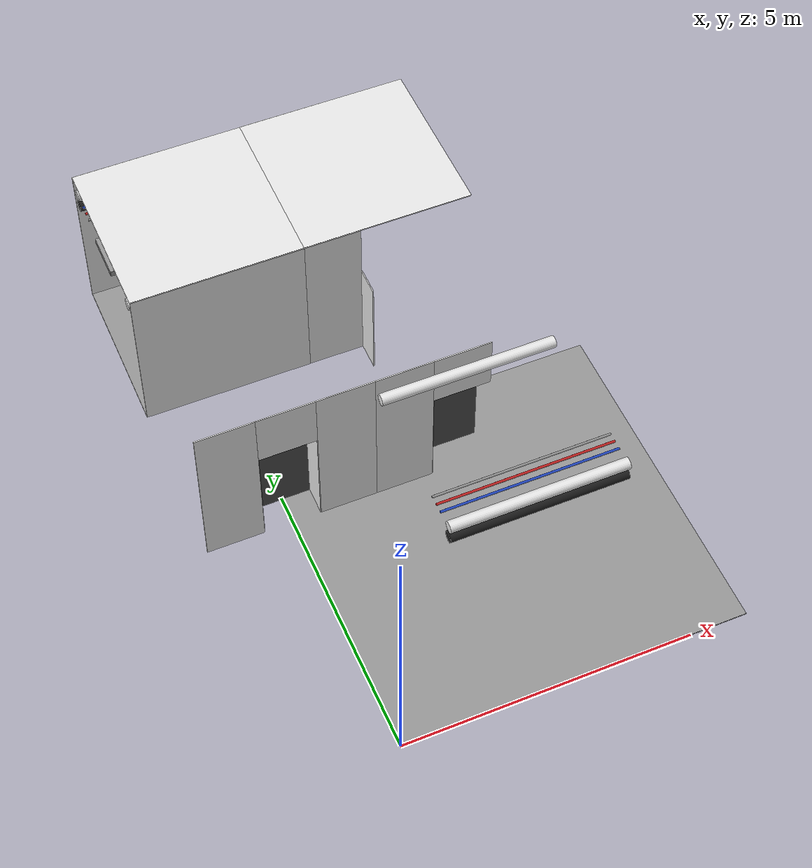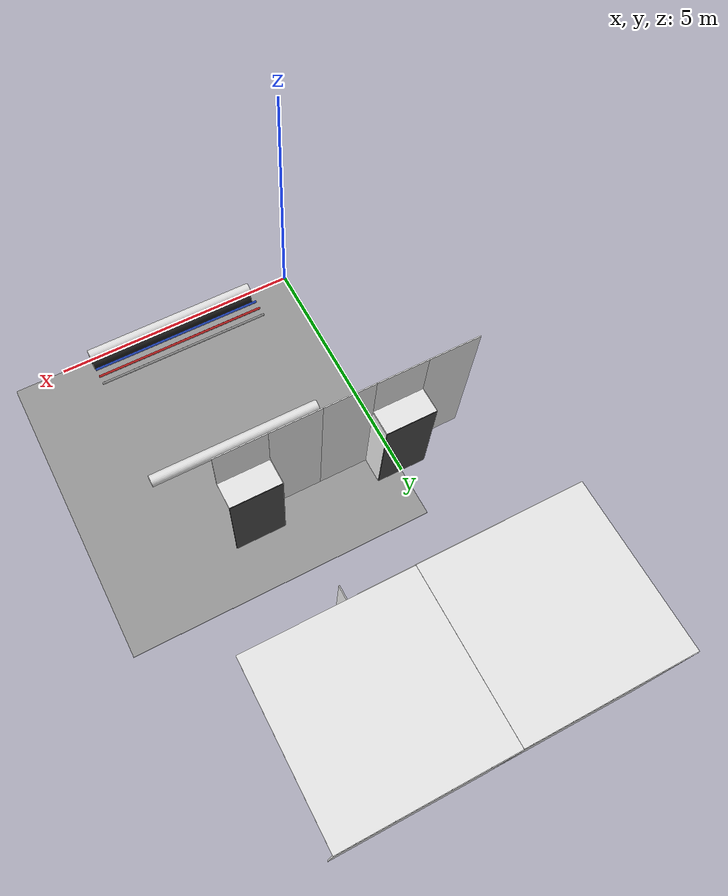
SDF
<sdf version="1.6">
 <world name="default">
  <model name="wall_front_front_left_0_1_0_2">
   <static>1</static>
   <pose>1.0 4.5 1.5 0.0 0.0 0.0</pose>
   <link name="link">
    <collision name="collision"><geometry><box><size>1.0 0.02 3.0</size></box></geometry></collision>
    <visual name="visual">
     <material>
      <script><name>Gazebo/White</name><uri>file://media/materials/scripts/gazebo.material</uri></script>
     </material>
     <geometry><box><size>1.0 0.02 3.0</size></box></geometry>
    </visual>
   </link>
  </model>
  <model name="wall_front_front_right_0_1_0_2">
   <static>1</static>
   <pose>-1.0 4.5 1.5 0.0 0.0 0.0</pose>
   <link name="link">
    <collision name="collision"><geometry><box><size>1.0 0.02 3.0</size></box></geometry></collision>
    <visual name="visual">
     <material>
      <script><name>Gazebo/White</name><uri>file://media/materials/scripts/gazebo.material</uri></script>
     </material>
     <geometry><box><size>1.0 0.02 3.0</size></box></geometry>
    </visual>
   </link>
  </model>
  <model name="wall_front_front_up_0_1_0_2">
   <static>1</static>
   <pose>0.0 4.5 2.5 0.0 0.0 0.0</pose>
   <link name="link">
    <collision name="collision"><geometry><box><size>1.0 0.02 1.0</size></box></geometry></collision>
    <visual name="visual">
     <material>
      <script><name>Gazebo/White</name><uri>file://media/materials/scripts/gazebo.material</uri></script>
     </material>
     <geometry><box><size>1.0 0.02 1.0</size></box></geometry>
    </visual>
   </link>
  </model>
  <model name="wall_front_inside_back_0_1_0_2">
   <static>1</static>
   <pose>0.0 5.0 1.0 0.0 0.0 0.0</pose>
   <link name="link">
    <collision name="collision"><geometry><box><size>1 0.02 2</size></box></geometry></collision>
    <visual name="visual">
     <material>
      <script><name>Gazebo/DarkGrey</name><uri>file://media/materials/scripts/gazebo.material</uri></script>
     </material>
     <geometry><box><size>1 0.02 2</size></box></geometry>
    </visual>
   </link>
  </model>
  <model name="wall_front_inside_left_0_1_0_2">
   <static>1</static>
   <pose>-0.5 4.75 1.0 0.0 0.0 1.57</pose>
   <link name="link">
    <collision name="collision"><geometry><box><size>0.5 0.02 2</size></box></geometry></collision>
    <visual name="visual">
     <material>
      <script><name>Gazebo/White</name><uri>file://media/materials/scripts/gazebo.material</uri></script>
     </material>
     <geometry><box><size>0.5 0.02 2</size></box></geometry>
    </visual>
   </link>
  </model>
  <model name="wall_front_inside_right_0_1_0_2">
   <static>1</static>
   <pose>0.5 4.75 1.0 0.0 0.0 1.57</pose>
   <link name="link">
    <collision name="collision"><geometry><box><size>0.5 0.02 2</size></box></geometry></collision>
    <visual name="visual">
     <material>
      <script><name>Gazebo/White</name><uri>file://media/materials/scripts/gazebo.material</uri></script>
     </material>
     <geometry><box><size>0.5 0.02 2</size></box></geometry>
    </visual>
   </link>
  </model>
  <model name="wall_front_inside_top_0_1_0_2">
   <static>1</static>
   <pose>0.0 4.75 2.0 1.57 0.0 0.0</pose>
   <link name="link">
    <collision name="collision"><geometry><box><size>1 0.02 0.5</size></box></geometry></collision>
    <visual name="visual">
     <material>
      <script><name>Gazebo/White</name><uri>file://media/materials/scripts/gazebo.material</uri></script>
     </material>
     <geometry><box><size>1 0.02 0.5</size></box></geometry>
    </visual>
   </link>
  </model>
  <model name="white_pipe_left_1_1_0_1">
   <static>1</static>
   <pose>3.0 3.0 2.76 0.0 0.0 -1.57</pose>
   <link name="link_0">
    <visual name="visual">
     <pose>-1.3 0 0 1.57 0 0</pose>
     <geometry><cylinder><radius>0.1</radius><length>3.0</length></cylinder></geometry>
     <material>
      <script><uri>file://media/materials/scripts/gazebo.material</uri><name>Gazebo/White</name></script>
     </material>
    </visual>
    <collision name="collision">
     <pose>-1.3 0 0 1.57 0 0</pose>
     <geometry><cylinder><radius>0.1</radius><length>3.0</length></cylinder></geometry>
    </collision>
   </link>
  </model>
  <model name="white_pipe_right_1_1_0_1">
   <static>1</static>
   <pose>3.0 3.0 2.76 0.0 0.0 -1.57</pose>
   <link name="link_0">
    <visual name="visual">
     <pose>1.3 0 0 1.57 0 0</pose>
     <geometry><cylinder><radius>0.1</radius><length>3.0</length></cylinder></geometry>
     <material>
      <script><uri>file://media/materials/scripts/gazebo.material</uri><name>Gazebo/White</name></script>
     </material>
    </visual>
    <collision name="collision">
     <pose>1.3 0 0 1.57 0 0</pose>
     <geometry><cylinder><radius>0.1</radius><length>3.0</length></cylinder></geometry>
    </collision>
   </link>
  </model>
  <model name="black_pipe_right_1_1_0_1">
   <static>1</static>
   <pose>3.0 3.0 2.76 0.0 0.0 -1.57</pose>
   <link name="link_0">
    <visual name="visual">
     <pose>1.3 0 -0.25 1.57 0 0</pose>
     <geometry><cylinder><radius>0.1</radius><length>3.0</length></cylinder></geometry>
     <material>
      <script><uri>file://media/materials/scripts/gazebo.material</uri><name>Gazebo/Black</name></script>
     </material>
    </visual>
    <collision name="collision">
     <pose>1.3 0 -0.25 1.57 0 0</pose>
     <geometry><cylinder><radius>0.1</radius><length>3.0</length></cylinder></geometry>
    </collision>
   </link>
  </model>
  <model name="grey_pipe_right_1_1_0_1">
   <static>1</static>
   <pose>3.0 3.0 2.76 0.0 0.0 -1.57</pose>
   <link name="link_0">
    <visual name="visual">
     <pose>0.7 0 0 1.57 0 0</pose>
     <geometry><cylinder><radius>0.02</radius><length>3.0</length></cylinder></geometry>
     <material>
      <script><uri>file://media/materials/scripts/gazebo.material</uri><name>Gazebo/Grey</name></script>
     </material>
    </visual>
    <collision name="collision">
     <pose>0.7 0 0 1.57 0 0</pose>
     <geometry><cylinder><radius>0.02</radius><length>3.0</length></cylinder></geometry>
    </collision>
   </link>
  </model>
  <model name="red_pipe_right_1_1_0_1">
   <static>1</static>
   <pose>3.0 3.0 2.76 0.0 0.0 -1.57</pose>
   <link name="link_0">
    <visual name="visual">
     <pose>0.85 0 0 1.57 0 0</pose>
     <geometry><cylinder><radius>0.02</radius><length>3.0</length></cylinder></geometry>
     <material>
      <script><uri>file://media/materials/scripts/gazebo.material</uri><name>Gazebo/Red</name></script>
     </material>
    </visual>
    <collision name="collision">
     <pose>0.85 0 0 1.57 0 0</pose>
     <geometry><cylinder><radius>0.02</radius><length>3.0</length></cylinder></geometry>
    </collision>
   </link>
  </model>
  <model name="blue_pipe_right_1_1_0_1">
   <static>1</static>
   <pose>3.0 3.0 2.76 0.0 0.0 -1.57</pose>
   <link name="link_0">
    <visual name="visual">
     <pose>1 0 0 1.57 0 0</pose>
     <geometry><cylinder><radius>0.02</radius><length>3.0</length></cylinder></geometry>
     <material>
      <script><uri>file://media/materials/scripts/gazebo.material</uri><name>Gazebo/Blue</name></script>
     </material>
    </visual>
    <collision name="collision">
     <pose>1 0 0 1.57 0 0</pose>
     <geometry><cylinder><radius>0.02</radius><length>3.0</length></cylinder></geometry>
    </collision>
   </link>
  </model>
  <model name="wall_left_front_right_1_1_0_1">
   <static>1</static>
   <pose>2.0 4.5 1.5 0.0 0.0 0.0</pose>
   <link name="link">
    <collision name="collision"><geometry><box><size>1.0 0.02 3.0</size></box></geometry></collision>
    <visual name="visual">
     <material>
      <script><name>Gazebo/White</name><uri>file://media/materials/scripts/gazebo.material</uri></script>
     </material>
     <geometry><box><size>1.0 0.02 3.0</size></box></geometry>
    </visual>
   </link>
  </model>
  <model name="wall_left_front_up_1_1_0_1">
   <static>1</static>
   <pose>3.0 4.5 2.5 0.0 0.0 0.0</pose>
   <link name="link">
    <collision name="collision"><geometry><box><size>1.0 0.02 1.0</size></box></geometry></collision>
    <visual name="visual">
     <material>
      <script><name>Gazebo/White</name><uri>file://media/materials/scripts/gazebo.material</uri></script>
     </material>
     <geometry><box><size>1.0 0.02 1.0</size></box></geometry>
    </visual>
   </link>
  </model>
  <model name="wall_left_inside_back_1_1_0_1">
   <static>1</static>
   <pose>3.0 5.0 1.0 0.0 0.0 0.0</pose>
   <link name="link">
    <collision name="collision"><geometry><box><size>1 0.02 2</size></box></geometry></collision>
    <visual name="visual">
     <material>
      <script><name>Gazebo/DarkGrey</name><uri>file://media/materials/scripts/gazebo.material</uri></script>
     </material>
     <geometry><box><size>1 0.02 2</size></box></geometry>
    </visual>
   </link>
  </model>
  <model name="wall_left_inside_right_1_1_0_1">
   <static>1</static>
   <pose>2.5 4.75 1.0 0.0 0.0 -1.57</pose>
   <link name="link">
    <collision name="collision"><geometry><box><size>0.5 0.02 2</size></box></geometry></collision>
    <visual name="visual">
     <material>
      <script><name>Gazebo/White</name><uri>file://media/materials/scripts/gazebo.material</uri></script>
     </material>
     <geometry><box><size>0.5 0.02 2</size></box></geometry>
    </visual>
   </link>
  </model>
  <model name="wall_left_inside_top_1_1_0_1">
   <static>1</static>
   <pose>3.0 4.75 2.0 1.57 0.0 0.0</pose>
   <link name="link">
    <collision name="collision"><geometry><box><size>1 0.02 0.5</size></box></geometry></collision>
    <visual name="visual">
     <material>
      <script><name>Gazebo/White</name><uri>file://media/materials/scripts/gazebo.material</uri></script>
     </material>
     <geometry><box><size>1 0.02 0.5</size></box></geometry>
    </visual>
   </link>
  </model>
  <model name="wall_bottom_1_1_0_1">
   <static>1</static>
   <pose>3.0 3.0 0.0 0.0 0.0 -1.57</pose>
   <link name="link">
    <collision name="collision"><geometry><box><size>6.0 6.0 0.02</size></box></geometry></collision>
    <visual name="visual">
     <material>
      <script><name>Gazebo/Grey</name><uri>file://media/materials/scripts/gazebo.material</uri></script>
     </material>
     <geometry><box><size>6.0 6.0 0.02</size></box></geometry>
    </visual>
   </link>
  </model>
  <model name="wall_right_1_3_0_1">
   <static>1</static>
   <pose>3.0 10.5 1.5 0.0 0.0 3.14</pose>
   <link name="link">
    <collision name="collision"><geometry><box><size>3.0 0.02 3.0</size></box></geometry></collision>
    <visual name="visual">
     <material>
      <script><name>Gazebo/White</name><uri>file://media/materials/scripts/gazebo.material</uri></script>
     </material>
     <geometry><box><size>3.0 0.02 3.0</size></box></geometry>
    </visual>
   </link>
  </model>
  <model name="wall_top_1_3_0_1">
   <static>1</static>
   <pose>3.0 9.0 3.0 1.57 0.0 1.57</pose>
   <link name="link">
    <collision name="collision"><geometry><box><size>3.0 0.02 3.0</size></box></geometry></collision>
    <visual name="visual">
     <material>
      <script><name>Gazebo/White</name><uri>file://media/materials/scripts/gazebo.material</uri></script>
     </material>
     <geometry><box><size>3.0 0.02 3.0</size></box></geometry>
    </visual>
   </link>
  </model>
  <model name="ceiling_1_1_3_0_1">
   <pose>3.0 9.0 2.55 0.0 0.0 1.57</pose>
   <link name="link_1">
    <visual name="visual">
     <geometry><box><size>0.8 1 0.1</size></box></geometry>
     <material>
      <script><uri>file://media/materials/scripts/gazebo.material</uri><name>Gazebo/Grey</name></script>
     </material>
    </visual>
    <collision name="collision"><geometry><box><size>0.8 1 0.1</size></box></geometry></collision>
   </link>
   <static>1</static>
  </model>
  <model name="ceiling_1_1_3_2_1">
   <pose>2.0 9.0 2.55 0.0 0.0 1.57</pose>
   <link name="link_1">
    <visual name="visual">
     <geometry><box><size>0.8 1 0.1</size></box></geometry>
     <material>
      <script><uri>file://media/materials/scripts/gazebo.material</uri><name>Gazebo/Grey</name></script>
     </material>
    </visual>
    <collision name="collision"><geometry><box><size>0.8 1 0.1</size></box></geometry></collision>
   </link>
   <static>1</static>
  </model>
  <model name="wall_left_front_left_1_3_0_1">
   <static>1</static>
   <pose>2.0 7.5 1.5 0.0 0.0 3.14</pose>
   <link name="link">
    <collision name="collision"><geometry><box><size>1.0 0.02 3.0</size></box></geometry></collision>
    <visual name="visual">
     <material>
      <script><name>Gazebo/White</name><uri>file://media/materials/scripts/gazebo.material</uri></script>
     </material>
     <geometry><box><size>1.0 0.02 3.0</size></box></geometry>
    </visual>
   </link>
  </model>
  <model name="wall_left_inside_left_1_3_0_1">
   <static>1</static>
   <pose>2.5 7.25 1.0 0.0 0.0 1.57</pose>
   <link name="link">
    <collision name="collision"><geometry><box><size>0.5 0.02 2</size></box></geometry></collision>
    <visual name="visual">
     <material>
      <script><name>Gazebo/White</name><uri>file://media/materials/scripts/gazebo.material</uri></script>
     </material>
     <geometry><box><size>0.5 0.02 2</size></box></geometry>
    </visual>
   </link>
  </model>
  <model name="wall_right_0_3_0_4">
   <static>1</static>
   <pose>0.0 10.5 1.5 0.0 0.0 3.14</pose>
   <link name="link">
    <collision name="collision"><geometry><box><size>3.0 0.02 3.0</size></box></geometry></collision>
    <visual name="visual">
     <material>
      <script><name>Gazebo/White</name><uri>file://media/materials/scripts/gazebo.material</uri></script>
     </material>
     <geometry><box><size>3.0 0.02 3.0</size></box></geometry>
    </visual>
   </link>
  </model>
  <model name="wall_left_0_3_0_4">
   <static>1</static>
   <pose>0.0 7.5 1.5 0.0 0.0 3.14</pose>
   <link name="link">
    <collision name="collision"><geometry><box><size>3.0 0.02 3.0</size></box></geometry></collision>
    <visual name="visual">
     <material>
      <script><name>Gazebo/White</name><uri>file://media/materials/scripts/gazebo.material</uri></script>
     </material>
     <geometry><box><size>3.0 0.02 3.0</size></box></geometry>
    </visual>
   </link>
  </model>
  <model name="wall_top_0_3_0_4">
   <static>1</static>
   <pose>0.0 9.0 3.0 1.57 0.0 1.57</pose>
   <link name="link">
    <collision name="collision"><geometry><box><size>3.0 0.02 3.0</size></box></geometry></collision>
    <visual name="visual">
     <material>
      <script><name>Gazebo/White</name><uri>file://media/materials/scripts/gazebo.material</uri></script>
     </material>
     <geometry><box><size>3.0 0.02 3.0</size></box></geometry>
    </visual>
   </link>
  </model>
  <model name="ceiling_1_0_3_0_4">
   <pose>0.0 9.0 2.55 0.0 0.0 1.57</pose>
   <link name="link_1">
    <visual name="visual">
     <geometry><box><size>0.8 1 0.1</size></box></geometry>
     <material>
      <script><uri>file://media/materials/scripts/gazebo.material</uri><name>Gazebo/Grey</name></script>
     </material>
    </visual>
    <collision name="collision"><geometry><box><size>0.8 1 0.1</size></box></geometry></collision>
   </link>
   <static>1</static>
  </model>
  <model name="ceiling_1_0_3_1_4">
   <pose>1.0 9.0 2.55 0.0 0.0 1.57</pose>
   <link name="link_1">
    <visual name="visual">
     <geometry><box><size>0.8 1 0.1</size></box></geometry>
     <material>
      <script><uri>file://media/materials/scripts/gazebo.material</uri><name>Gazebo/Grey</name></script>
     </material>
    </visual>
    <collision name="collision"><geometry><box><size>0.8 1 0.1</size></box></geometry></collision>
   </link>
   <static>1</static>
  </model>
  <model name="ceiling_1_0_3_2_4">
   <pose>-1.0 9.0 2.55 0.0 0.0 1.57</pose>
   <link name="link_1">
    <visual name="visual">
     <geometry><box><size>0.8 1 0.1</size></box></geometry>
     <material>
      <script><uri>file://media/materials/scripts/gazebo.material</uri><name>Gazebo/Grey</name></script>
     </material>
    </visual>
    <collision name="collision"><geometry><box><size>0.8 1 0.1</size></box></geometry></collision>
   </link>
   <static>1</static>
  </model>
  <model name="white_pipe_left_0_3_0_4">
   <static>1</static>
   <pose>0.0 9.0 2.76 0.0 0.0 1.57</pose>
   <link name="link_0">
    <visual name="visual">
     <pose>-1.3 0 0 1.57 0 0</pose>
     <geometry><cylinder><radius>0.1</radius><length>3.0</length></cylinder></geometry>
     <material>
      <script><uri>file://media/materials/scripts/gazebo.material</uri><name>Gazebo/White</name></script>
     </material>
    </visual>
    <collision name="collision">
     <pose>-1.3 0 0 1.57 0 0</pose>
     <geometry><cylinder><radius>0.1</radius><length>3.0</length></cylinder></geometry>
    </collision>
   </link>
  </model>
  <model name="white_pipe_right_0_3_0_4">
   <static>1</static>
   <pose>0.0 9.0 2.76 0.0 0.0 1.57</pose>
   <link name="link_0">
    <visual name="visual">
     <pose>1.3 0 0 1.57 0 0</pose>
     <geometry><cylinder><radius>0.1</radius><length>3.0</length></cylinder></geometry>
     <material>
      <script><uri>file://media/materials/scripts/gazebo.material</uri><name>Gazebo/White</name></script>
     </material>
    </visual>
    <collision name="collision">
     <pose>1.3 0 0 1.57 0 0</pose>
     <geometry><cylinder><radius>0.1</radius><length>3.0</length></cylinder></geometry>
    </collision>
   </link>
  </model>
  <model name="black_pipe_right_0_3_0_4">
   <static>1</static>
   <pose>0.0 9.0 2.76 0.0 0.0 1.57</pose>
   <link name="link_0">
    <visual name="visual">
     <pose>1.3 0 -0.25 1.57 0 0</pose>
     <geometry><cylinder><radius>0.1</radius><length>3.0</length></cylinder></geometry>
     <material>
      <script><uri>file://media/materials/scripts/gazebo.material</uri><name>Gazebo/Black</name></script>
     </material>
    </visual>
    <collision name="collision">
     <pose>1.3 0 -0.25 1.57 0 0</pose>
     <geometry><cylinder><radius>0.1</radius><length>3.0</length></cylinder></geometry>
    </collision>
   </link>
  </model>
  <model name="grey_pipe_right_0_3_0_4">
   <static>1</static>
   <pose>0.0 9.0 2.76 0.0 0.0 1.57</pose>
   <link name="link_0">
    <visual name="visual">
     <pose>0.7 0 0 1.57 0 0</pose>
     <geometry><cylinder><radius>0.02</radius><length>3.0</length></cylinder></geometry>
     <material>
      <script><uri>file://media/materials/scripts/gazebo.material</uri><name>Gazebo/Grey</name></script>
     </material>
    </visual>
    <collision name="collision">
     <pose>0.7 0 0 1.57 0 0</pose>
     <geometry><cylinder><radius>0.02</radius><length>3.0</length></cylinder></geometry>
    </collision>
   </link>
  </model>
  <model name="red_pipe_right_0_3_0_4">
   <static>1</static>
   <pose>0.0 9.0 2.76 0.0 0.0 1.57</pose>
   <link name="link_0">
    <visual name="visual">
     <pose>0.85 0 0 1.57 0 0</pose>
     <geometry><cylinder><radius>0.02</radius><length>3.0</length></cylinder></geometry>
     <material>
      <script><uri>file://media/materials/scripts/gazebo.material</uri><name>Gazebo/Red</name></script>
     </material>
    </visual>
    <collision name="collision">
     <pose>0.85 0 0 1.57 0 0</pose>
     <geometry><cylinder><radius>0.02</radius><length>3.0</length></cylinder></geometry>
    </collision>
   </link>
  </model>
  <model name="blue_pipe_right_0_3_0_4">
   <static>1</static>
   <pose>0.0 9.0 2.76 0.0 0.0 1.57</pose>
   <link name="link_0">
    <visual name="visual">
     <pose>1 0 0 1.57 0 0</pose>
     <geometry><cylinder><radius>0.02</radius><length>3.0</length></cylinder></geometry>
     <material>
      <script><uri>file://media/materials/scripts/gazebo.material</uri><name>Gazebo/Blue</name></script>
     </material>
    </visual>
    <collision name="collision">
     <pose>1 0 0 1.57 0 0</pose>
     <geometry><cylinder><radius>0.02</radius><length>3.0</length></cylinder></geometry>
    </collision>
   </link>
  </model>
  <model name="wall_bottom_0_3_0_4">
   <static>1</static>
   <pose>0.0 9.0 0.0 0.0 0.0 1.57</pose>
   <link name="link">
    <collision name="collision"><geometry><box><size>3.0 3.0 0.02</size></box></geometry></collision>
    <visual name="visual">
     <material>
      <script><name>Gazebo/Grey</name><uri>file://media/materials/scripts/gazebo.material</uri></script>
     </material>
     <geometry><box><size>3.0 3.0 0.02</size></box></geometry>
    </visual>
   </link>
  </model>
 </world>
</sdf>
